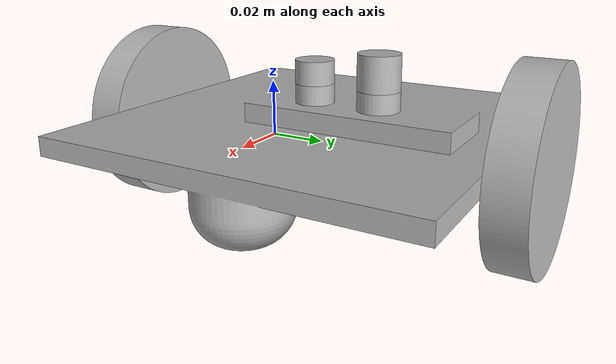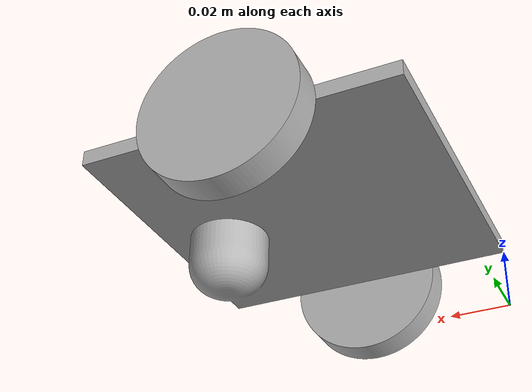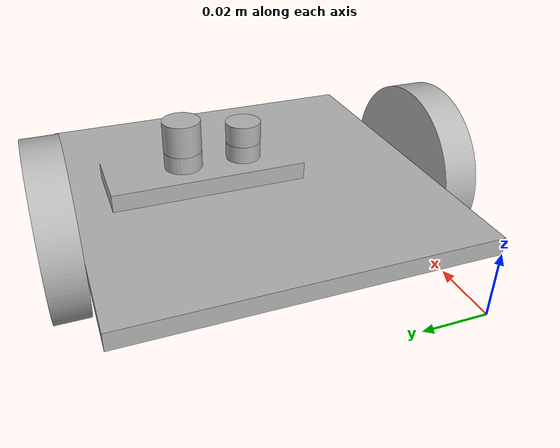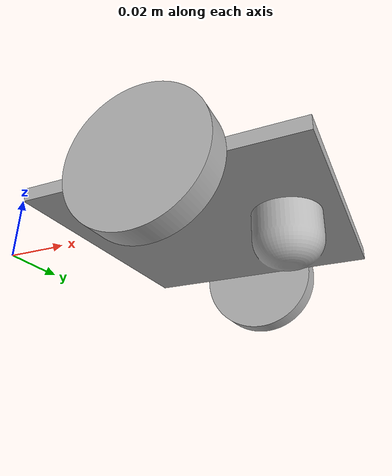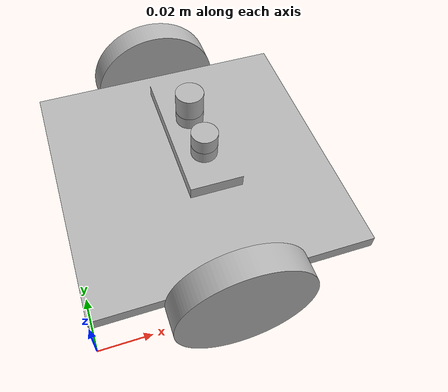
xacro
<?xml version="1.0" ?>
<robot name="s1100851" xmlns:xacro="http://www.ros.org/wiki/xacro">

<xacro:include filename="$(find s1100851_description)/urdf/materials.xacro" />
<xacro:include filename="$(find s1100851_description)/urdf/s1100851.trans" />
<xacro:include filename="$(find s1100851_description)/urdf/s1100851.gazebo" />
<link name="base_link">
  <inertial>
    <origin xyz="0.054600218095921464 0.050490875959185964 0.021502333541230812" rpy="0 0 0"/>
    <mass value="0.5126119186938088"/>
    <inertia ixx="0.000363" iyy="0.000398" izz="0.000735" ixy="9e-06" iyz="-8e-06" ixz="2e-05"/>
  </inertial>
  <visual>
    <origin xyz="0 0 0" rpy="0 0 0"/>
    <geometry>
      <mesh filename="package://s1100851_description/meshes/base_link.stl" scale="0.001 0.001 0.001"/>
    </geometry>
    <material name="silver"/>
  </visual>
  <collision>
    <origin xyz="0 0 0" rpy="0 0 0"/>
    <geometry>
      <mesh filename="package://s1100851_description/meshes/base_link.stl" scale="0.001 0.001 0.001"/>
    </geometry>
  </collision>
</link>

<link name="right_wheel_1">
  <inertial>
    <origin xyz="-1.3877787807814457e-17 -0.005 -6.938893903907228e-18" rpy="0 0 0"/>
    <mass value="0.1541343895667492"/>
    <inertia ixx="2.5e-05" iyy="4.8e-05" izz="2.5e-05" ixy="0.0" iyz="-0.0" ixz="-0.0"/>
  </inertial>
  <visual>
    <origin xyz="-0.05 -0.0 -0.02" rpy="0 0 0"/>
    <geometry>
      <mesh filename="package://s1100851_description/meshes/right_wheel_1.stl" scale="0.001 0.001 0.001"/>
    </geometry>
    <material name="silver"/>
  </visual>
  <collision>
    <origin xyz="-0.05 -0.0 -0.02" rpy="0 0 0"/>
    <geometry>
      <mesh filename="package://s1100851_description/meshes/right_wheel_1.stl" scale="0.001 0.001 0.001"/>
    </geometry>
  </collision>
</link>

<link name="left_wheel_1">
  <inertial>
    <origin xyz="-1.3877787807814457e-17 0.0049999999999999906 -3.469446951953614e-18" rpy="0 0 0"/>
    <mass value="0.15413438956674924"/>
    <inertia ixx="2.5e-05" iyy="4.8e-05" izz="2.5e-05" ixy="-0.0" iyz="-0.0" ixz="-0.0"/>
  </inertial>
  <visual>
    <origin xyz="-0.05 -0.1 -0.02" rpy="0 0 0"/>
    <geometry>
      <mesh filename="package://s1100851_description/meshes/left_wheel_1.stl" scale="0.001 0.001 0.001"/>
    </geometry>
    <material name="silver"/>
  </visual>
  <collision>
    <origin xyz="-0.05 -0.1 -0.02" rpy="0 0 0"/>
    <geometry>
      <mesh filename="package://s1100851_description/meshes/left_wheel_1.stl" scale="0.001 0.001 0.001"/>
    </geometry>
  </collision>
</link>

<link name="lider_1">
  <inertial>
    <origin xyz="2.0816681711721685e-17 0.0 0.0030000000000000027" rpy="0 0 0"/>
    <mass value="0.0036992253496019776"/>
    <inertia ixx="0.0" iyy="0.0" izz="0.0" ixy="0.0" iyz="0.0" ixz="0.0"/>
  </inertial>
  <visual>
    <origin xyz="-0.055 -0.05 -0.035" rpy="0 0 0"/>
    <geometry>
      <mesh filename="package://s1100851_description/meshes/lider_1.stl" scale="0.001 0.001 0.001"/>
    </geometry>
    <material name="silver"/>
  </visual>
  <collision>
    <origin xyz="-0.055 -0.05 -0.035" rpy="0 0 0"/>
    <geometry>
      <mesh filename="package://s1100851_description/meshes/lider_1.stl" scale="0.001 0.001 0.001"/>
    </geometry>
  </collision>
</link>

<link name="camera_1">
  <inertial>
    <origin xyz="2.7755575615628914e-17 -2.1522353452207987e-07 0.004500000000000004" rpy="0 0 0"/>
    <mass value="0.006392789395338336"/>
    <inertia ixx="0.0" iyy="0.0" izz="0.0" ixy="0.0" iyz="0.0" ixz="0.0"/>
  </inertial>
  <visual>
    <origin xyz="-0.055 -0.067867 -0.035" rpy="0 0 0"/>
    <geometry>
      <mesh filename="package://s1100851_description/meshes/camera_1.stl" scale="0.001 0.001 0.001"/>
    </geometry>
    <material name="silver"/>
  </visual>
  <collision>
    <origin xyz="-0.055 -0.067867 -0.035" rpy="0 0 0"/>
    <geometry>
      <mesh filename="package://s1100851_description/meshes/camera_1.stl" scale="0.001 0.001 0.001"/>
    </geometry>
  </collision>
</link>

<joint name="Revolute 1" type="continuous">
  <origin xyz="0.05 0.0 0.02" rpy="0 0 0"/>
  <parent link="base_link"/>
  <child link="right_wheel_1"/>
  <axis xyz="0.0 -1.0 0.0"/>
</joint>

<joint name="Revolute 2" type="continuous">
  <origin xyz="0.05 0.1 0.02" rpy="0 0 0"/>
  <parent link="base_link"/>
  <child link="left_wheel_1"/>
  <axis xyz="0.0 1.0 0.0"/>
</joint>

<joint name="Rigid 3" type="fixed">
  <origin xyz="0.055 0.05 0.035" rpy="0 0 0"/>
  <parent link="base_link"/>
  <child link="lider_1"/>
</joint>

<joint name="Rigid 4" type="fixed">
  <origin xyz="0.055 0.067867 0.035" rpy="0 0 0"/>
  <parent link="base_link"/>
  <child link="camera_1"/>
</joint>

</robot>

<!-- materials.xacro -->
<robot name="s1100851" xmlns:xacro="http://www.ros.org/wiki/xacro" >

<material name="silver">
  <color rgba="0.700 0.700 0.700 1.000"/>
</material>

</robot>

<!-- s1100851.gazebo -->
<robot name="s1100851" xmlns:xacro="http://www.ros.org/wiki/xacro" >

<xacro:property name="body_color" value="Gazebo/Silver" />

<gazebo>
  <plugin name="control" filename="libgazebo_ros_control.so"/>
</gazebo>
<gazebo reference="base_link">
  <material>${body_color}</material>
  <mu1>0.2</mu1>
  <mu2>0.2</mu2>
  <selfCollide>true</selfCollide>
  <gravity>true</gravity>
</gazebo>

<gazebo reference="right_wheel_1">
  <material>${body_color}</material>
  <mu1>0.2</mu1>
  <mu2>0.2</mu2>
  <selfCollide>true</selfCollide>
</gazebo>

<gazebo reference="left_wheel_1">
  <material>${body_color}</material>
  <mu1>0.2</mu1>
  <mu2>0.2</mu2>
  <selfCollide>true</selfCollide>
</gazebo>

<gazebo reference="lider_1">
  <material>${body_color}</material>
  <mu1>0.2</mu1>
  <mu2>0.2</mu2>
  <selfCollide>true</selfCollide>
</gazebo>

<gazebo reference="camera_1">
  <material>${body_color}</material>
  <mu1>0.2</mu1>
  <mu2>0.2</mu2>
  <selfCollide>true</selfCollide>
</gazebo>

</robot>
